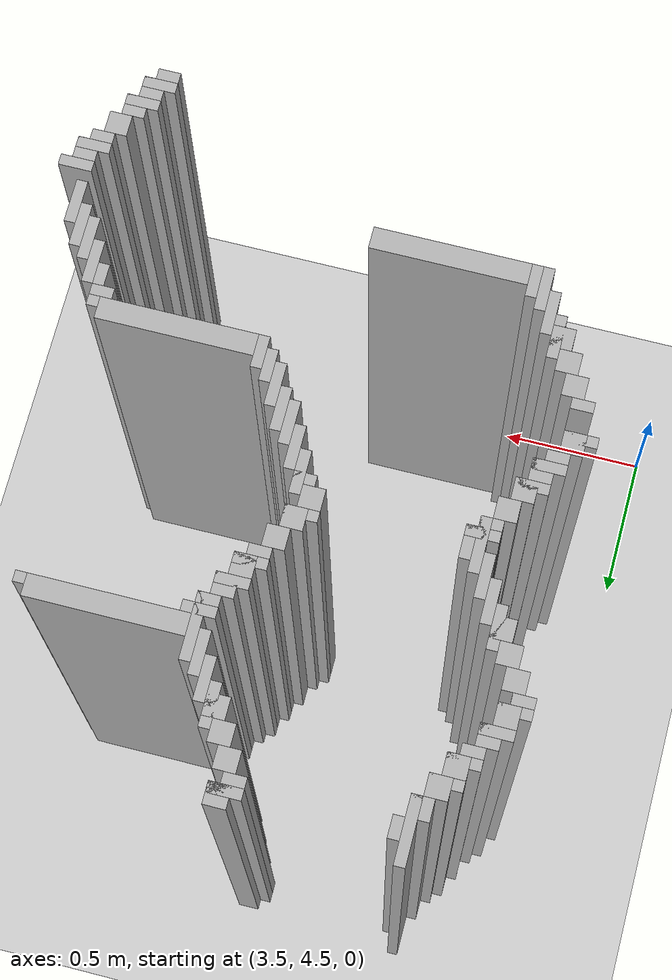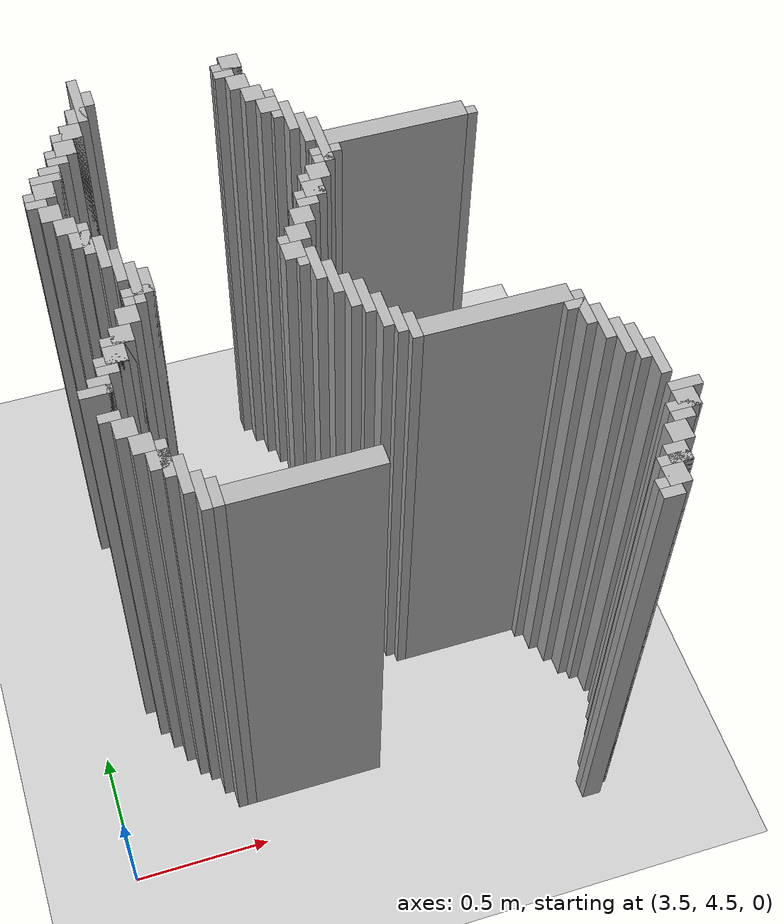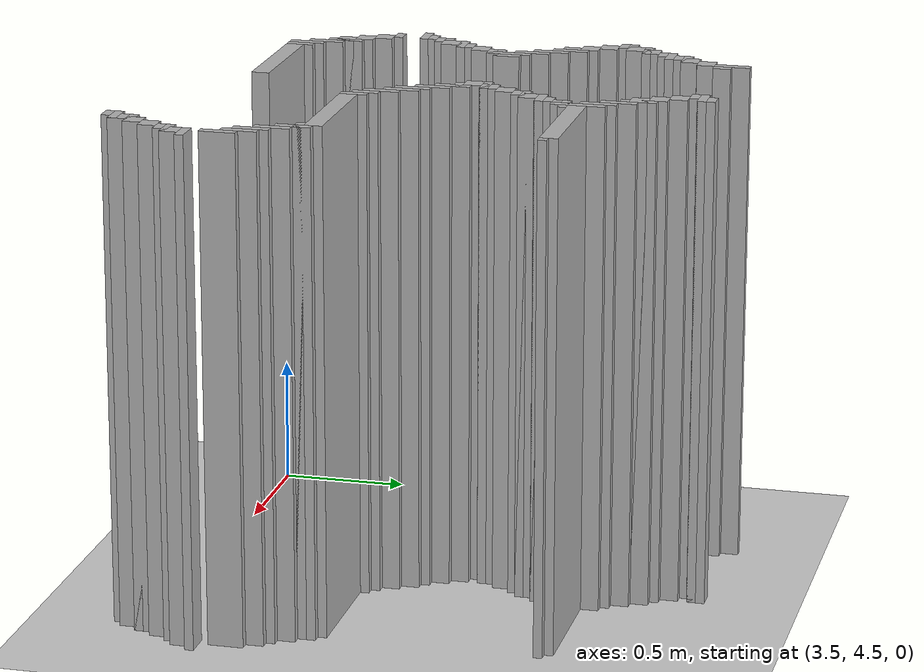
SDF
<sdf version="1.6">
 <world name="slam_world">
  <model name="ground_plane">
   <static>true</static>
   <link name="link">
    <collision name="collision">
     <geometry><plane><normal>0 0 1</normal><size>100 100</size></plane></geometry>
    </collision>
    <visual name="visual">
     <geometry><plane><normal>0 0 1</normal><size>100 100</size></plane></geometry>
     <material>
      <ambient>0.8 0.8 0.8 1</ambient>
      <diffuse>0.8 0.8 0.8 1</diffuse>
      <specular>0.8 0.8 0.8 1</specular>
     </material>
    </visual>
   </link>
  </model>
  <model name="wall_3669">
   <static>true</static>
   <pose>3.9501160092807424 6.403712296983758 1.0 0 0 0</pose>
   <link name="link">
    <collision name="collision">
     <geometry><box><size>0.03480278422273782 0.2088167053364269 2.0</size></box></geometry>
    </collision>
    <visual name="visual">
     <geometry><box><size>0.03480278422273782 0.2088167053364269 2.0</size></box></geometry>
     <material><ambient>0.5 0.5 0.5 1</ambient><diffuse>0.7 0.7 0.7 1</diffuse></material>
    </visual>
   </link>
  </model>
  <model name="wall_3681">
   <static>true</static>
   <pose>4.489559164733178 6.438515081206496 1.0 0 0 0</pose>
   <link name="link">
    <collision name="collision">
     <geometry><box><size>0.06960556844547564 0.06960556844547564 2.0</size></box></geometry>
    </collision>
    <visual name="visual">
     <geometry><box><size>0.06960556844547564 0.06960556844547564 2.0</size></box></geometry>
     <material><ambient>0.5 0.5 0.5 1</ambient><diffuse>0.7 0.7 0.7 1</diffuse></material>
    </visual>
   </link>
  </model>
  <model name="wall_3690">
   <static>true</static>
   <pose>3.98491879350348 6.403712296983758 1.0 0 0 0</pose>
   <link name="link">
    <collision name="collision">
     <geometry><box><size>0.03480278422273782 0.06960556844547564 2.0</size></box></geometry>
    </collision>
    <visual name="visual">
     <geometry><box><size>0.03480278422273782 0.06960556844547564 2.0</size></box></geometry>
     <material><ambient>0.5 0.5 0.5 1</ambient><diffuse>0.7 0.7 0.7 1</diffuse></material>
    </visual>
   </link>
  </model>
  <model name="wall_3691">
   <static>true</static>
   <pose>4.472157772621809 6.421113689095128 1.0 0 0 0</pose>
   <link name="link">
    <collision name="collision">
     <geometry><box><size>0.10440835266821345 0.03480278422273782 2.0</size></box></geometry>
    </collision>
    <visual name="visual">
     <geometry><box><size>0.10440835266821345 0.03480278422273782 2.0</size></box></geometry>
     <material><ambient>0.5 0.5 0.5 1</ambient><diffuse>0.7 0.7 0.7 1</diffuse></material>
    </visual>
   </link>
  </model>
  <model name="wall_3704">
   <static>true</static>
   <pose>4.454756380510441 6.386310904872389 1.0 0 0 0</pose>
   <link name="link">
    <collision name="collision">
     <geometry><box><size>0.06960556844547564 0.03480278422273782 2.0</size></box></geometry>
    </collision>
    <visual name="visual">
     <geometry><box><size>0.06960556844547564 0.03480278422273782 2.0</size></box></geometry>
     <material><ambient>0.5 0.5 0.5 1</ambient><diffuse>0.7 0.7 0.7 1</diffuse></material>
    </visual>
   </link>
  </model>
  <model name="wall_3714">
   <static>true</static>
   <pose>3.932714617169373 6.334106728538282 1.0 0 0 0</pose>
   <link name="link">
    <collision name="collision">
     <geometry><box><size>0.06960556844547564 0.06960556844547564 2.0</size></box></geometry>
    </collision>
    <visual name="visual">
     <geometry><box><size>0.06960556844547564 0.06960556844547564 2.0</size></box></geometry>
     <material><ambient>0.5 0.5 0.5 1</ambient><diffuse>0.7 0.7 0.7 1</diffuse></material>
    </visual>
   </link>
  </model>
  <model name="wall_3715">
   <static>true</static>
   <pose>4.489559164733178 6.334106728538282 1.0 0 0 0</pose>
   <link name="link">
    <collision name="collision">
     <geometry><box><size>0.06960556844547564 0.06960556844547564 2.0</size></box></geometry>
    </collision>
    <visual name="visual">
     <geometry><box><size>0.06960556844547564 0.06960556844547564 2.0</size></box></geometry>
     <material><ambient>0.5 0.5 0.5 1</ambient><diffuse>0.7 0.7 0.7 1</diffuse></material>
    </visual>
   </link>
  </model>
  <model name="wall_3741">
   <static>true</static>
   <pose>3.897911832946636 6.2645011600928076 1.0 0 0 0</pose>
   <link name="link">
    <collision name="collision">
     <geometry><box><size>0.06960556844547564 0.06960556844547564 2.0</size></box></geometry>
    </collision>
    <visual name="visual">
     <geometry><box><size>0.06960556844547564 0.06960556844547564 2.0</size></box></geometry>
     <material><ambient>0.5 0.5 0.5 1</ambient><diffuse>0.7 0.7 0.7 1</diffuse></material>
    </visual>
   </link>
  </model>
  <model name="wall_3742">
   <static>true</static>
   <pose>4.524361948955916 6.2645011600928076 1.0 0 0 0</pose>
   <link name="link">
    <collision name="collision">
     <geometry><box><size>0.06960556844547564 0.06960556844547564 2.0</size></box></geometry>
    </collision>
    <visual name="visual">
     <geometry><box><size>0.06960556844547564 0.06960556844547564 2.0</size></box></geometry>
     <material><ambient>0.5 0.5 0.5 1</ambient><diffuse>0.7 0.7 0.7 1</diffuse></material>
    </visual>
   </link>
  </model>
  <model name="wall_3759">
   <static>true</static>
   <pose>3.8805104408352666 6.247099767981438 1.0 0 0 0</pose>
   <link name="link">
    <collision name="collision">
     <geometry><box><size>0.10440835266821345 0.03480278422273782 2.0</size></box></geometry>
    </collision>
    <visual name="visual">
     <geometry><box><size>0.10440835266821345 0.03480278422273782 2.0</size></box></geometry>
     <material><ambient>0.5 0.5 0.5 1</ambient><diffuse>0.7 0.7 0.7 1</diffuse></material>
    </visual>
   </link>
  </model>
  <model name="wall_3760">
   <static>true</static>
   <pose>4.576566125290023 6.194895591647332 1.0 0 0 0</pose>
   <link name="link">
    <collision name="collision">
     <geometry><box><size>0.03480278422273782 0.13921113689095127 2.0</size></box></geometry>
    </collision>
    <visual name="visual">
     <geometry><box><size>0.03480278422273782 0.13921113689095127 2.0</size></box></geometry>
     <material><ambient>0.5 0.5 0.5 1</ambient><diffuse>0.7 0.7 0.7 1</diffuse></material>
    </visual>
   </link>
  </model>
  <model name="wall_3777">
   <static>true</static>
   <pose>3.863109048723898 6.194895591647332 1.0 0 0 0</pose>
   <link name="link">
    <collision name="collision">
     <geometry><box><size>0.06960556844547564 0.06960556844547564 2.0</size></box></geometry>
    </collision>
    <visual name="visual">
     <geometry><box><size>0.06960556844547564 0.06960556844547564 2.0</size></box></geometry>
     <material><ambient>0.5 0.5 0.5 1</ambient><diffuse>0.7 0.7 0.7 1</diffuse></material>
    </visual>
   </link>
  </model>
  <model name="wall_3778">
   <static>true</static>
   <pose>4.559164733178654 6.194895591647332 1.0 0 0 0</pose>
   <link name="link">
    <collision name="collision">
     <geometry><box><size>0.06960556844547564 0.06960556844547564 2.0</size></box></geometry>
    </collision>
    <visual name="visual">
     <geometry><box><size>0.06960556844547564 0.06960556844547564 2.0</size></box></geometry>
     <material><ambient>0.5 0.5 0.5 1</ambient><diffuse>0.7 0.7 0.7 1</diffuse></material>
    </visual>
   </link>
  </model>
  <model name="wall_3795">
   <static>true</static>
   <pose>3.845707656612529 6.177494199535962 1.0 0 0 0</pose>
   <link name="link">
    <collision name="collision">
     <geometry><box><size>0.10440835266821345 0.03480278422273782 2.0</size></box></geometry>
    </collision>
    <visual name="visual">
     <geometry><box><size>0.10440835266821345 0.03480278422273782 2.0</size></box></geometry>
     <material><ambient>0.5 0.5 0.5 1</ambient><diffuse>0.7 0.7 0.7 1</diffuse></material>
    </visual>
   </link>
  </model>
  <model name="wall_3796">
   <static>true</static>
   <pose>4.611368909512761 6.125290023201856 1.0 0 0 0</pose>
   <link name="link">
    <collision name="collision">
     <geometry><box><size>0.03480278422273782 0.13921113689095127 2.0</size></box></geometry>
    </collision>
    <visual name="visual">
     <geometry><box><size>0.03480278422273782 0.13921113689095127 2.0</size></box></geometry>
     <material><ambient>0.5 0.5 0.5 1</ambient><diffuse>0.7 0.7 0.7 1</diffuse></material>
    </visual>
   </link>
  </model>
  <model name="wall_3810">
   <static>true</static>
   <pose>3.82830626450116 6.142691415313225 1.0 0 0 0</pose>
   <link name="link">
    <collision name="collision">
     <geometry><box><size>0.06960556844547564 0.03480278422273782 2.0</size></box></geometry>
    </collision>
    <visual name="visual">
     <geometry><box><size>0.06960556844547564 0.03480278422273782 2.0</size></box></geometry>
     <material><ambient>0.5 0.5 0.5 1</ambient><diffuse>0.7 0.7 0.7 1</diffuse></material>
    </visual>
   </link>
  </model>
  <model name="wall_3822">
   <static>true</static>
   <pose>3.793503480278422 6.090487238979118 1.0 0 0 0</pose>
   <link name="link">
    <collision name="collision">
     <geometry><box><size>0.06960556844547564 0.06960556844547564 2.0</size></box></geometry>
    </collision>
    <visual name="visual">
     <geometry><box><size>0.06960556844547564 0.06960556844547564 2.0</size></box></geometry>
     <material><ambient>0.5 0.5 0.5 1</ambient><diffuse>0.7 0.7 0.7 1</diffuse></material>
    </visual>
   </link>
  </model>
  <model name="wall_3823">
   <static>true</static>
   <pose>4.646171693735498 6.05568445475638 1.0 0 0 0</pose>
   <link name="link">
    <collision name="collision">
     <geometry><box><size>0.03480278422273782 0.13921113689095127 2.0</size></box></geometry>
    </collision>
    <visual name="visual">
     <geometry><box><size>0.03480278422273782 0.13921113689095127 2.0</size></box></geometry>
     <material><ambient>0.5 0.5 0.5 1</ambient><diffuse>0.7 0.7 0.7 1</diffuse></material>
    </visual>
   </link>
  </model>
  <model name="wall_3840">
   <static>true</static>
   <pose>3.776102088167053 6.073085846867749 1.0 0 0 0</pose>
   <link name="link">
    <collision name="collision">
     <geometry><box><size>0.10440835266821345 0.03480278422273782 2.0</size></box></geometry>
    </collision>
    <visual name="visual">
     <geometry><box><size>0.10440835266821345 0.03480278422273782 2.0</size></box></geometry>
     <material><ambient>0.5 0.5 0.5 1</ambient><diffuse>0.7 0.7 0.7 1</diffuse></material>
    </visual>
   </link>
  </model>
  <model name="wall_3841">
   <static>true</static>
   <pose>4.6809744779582365 5.986078886310905 1.0 0 0 0</pose>
   <link name="link">
    <collision name="collision">
     <geometry><box><size>0.03480278422273782 0.2088167053364269 2.0</size></box></geometry>
    </collision>
    <visual name="visual">
     <geometry><box><size>0.03480278422273782 0.2088167053364269 2.0</size></box></geometry>
     <material><ambient>0.5 0.5 0.5 1</ambient><diffuse>0.7 0.7 0.7 1</diffuse></material>
    </visual>
   </link>
  </model>
  <model name="wall_3855">
   <static>true</static>
   <pose>3.7587006960556844 6.020881670533642 1.0 0 0 0</pose>
   <link name="link">
    <collision name="collision">
     <geometry><box><size>0.06960556844547564 0.06960556844547564 2.0</size></box></geometry>
    </collision>
    <visual name="visual">
     <geometry><box><size>0.06960556844547564 0.06960556844547564 2.0</size></box></geometry>
     <material><ambient>0.5 0.5 0.5 1</ambient><diffuse>0.7 0.7 0.7 1</diffuse></material>
    </visual>
   </link>
  </model>
  <model name="wall_3867">
   <static>true</static>
   <pose>3.741299303944315 6.003480278422273 1.0 0 0 0</pose>
   <link name="link">
    <collision name="collision">
     <geometry><box><size>0.10440835266821345 0.03480278422273782 2.0</size></box></geometry>
    </collision>
    <visual name="visual">
     <geometry><box><size>0.10440835266821345 0.03480278422273782 2.0</size></box></geometry>
     <material><ambient>0.5 0.5 0.5 1</ambient><diffuse>0.7 0.7 0.7 1</diffuse></material>
    </visual>
   </link>
  </model>
  <model name="wall_3868">
   <static>true</static>
   <pose>4.94199535962877 5.986078886310905 1.0 0 0 0</pose>
   <link name="link">
    <collision name="collision">
     <geometry><box><size>0.4872389791183295 0.06960556844547564 2.0</size></box></geometry>
    </collision>
    <visual name="visual">
     <geometry><box><size>0.4872389791183295 0.06960556844547564 2.0</size></box></geometry>
     <material><ambient>0.5 0.5 0.5 1</ambient><diffuse>0.7 0.7 0.7 1</diffuse></material>
    </visual>
   </link>
  </model>
  <model name="wall_3879">
   <static>true</static>
   <pose>3.7238979118329465 5.968677494199536 1.0 0 0 0</pose>
   <link name="link">
    <collision name="collision">
     <geometry><box><size>0.06960556844547564 0.03480278422273782 2.0</size></box></geometry>
    </collision>
    <visual name="visual">
     <geometry><box><size>0.06960556844547564 0.03480278422273782 2.0</size></box></geometry>
     <material><ambient>0.5 0.5 0.5 1</ambient><diffuse>0.7 0.7 0.7 1</diffuse></material>
    </visual>
   </link>
  </model>
  <model name="wall_3880">
   <static>true</static>
   <pose>5.203016241299304 5.968677494199536 1.0 0 0 0</pose>
   <link name="link">
    <collision name="collision">
     <geometry><box><size>0.03480278422273782 0.03480278422273782 2.0</size></box></geometry>
    </collision>
    <visual name="visual">
     <geometry><box><size>0.03480278422273782 0.03480278422273782 2.0</size></box></geometry>
     <material><ambient>0.5 0.5 0.5 1</ambient><diffuse>0.7 0.7 0.7 1</diffuse></material>
    </visual>
   </link>
  </model>
  <model name="wall_3890">
   <static>true</static>
   <pose>3.7587006960556844 5.916473317865429 1.0 0 0 0</pose>
   <link name="link">
    <collision name="collision">
     <geometry><box><size>0.06960556844547564 0.06960556844547564 2.0</size></box></geometry>
    </collision>
    <visual name="visual">
     <geometry><box><size>0.06960556844547564 0.06960556844547564 2.0</size></box></geometry>
     <material><ambient>0.5 0.5 0.5 1</ambient><diffuse>0.7 0.7 0.7 1</diffuse></material>
    </visual>
   </link>
  </model>
  <model name="wall_3891">
   <static>true</static>
   <pose>4.6809744779582365 5.933874709976798 1.0 0 0 0</pose>
   <link name="link">
    <collision name="collision">
     <geometry><box><size>0.10440835266821345 0.03480278422273782 2.0</size></box></geometry>
    </collision>
    <visual name="visual">
     <geometry><box><size>0.10440835266821345 0.03480278422273782 2.0</size></box></geometry>
     <material><ambient>0.5 0.5 0.5 1</ambient><diffuse>0.7 0.7 0.7 1</diffuse></material>
    </visual>
   </link>
  </model>
  <model name="wall_3899">
   <static>true</static>
   <pose>4.663573085846868 5.89907192575406 1.0 0 0 0</pose>
   <link name="link">
    <collision name="collision">
     <geometry><box><size>0.06960556844547564 0.03480278422273782 2.0</size></box></geometry>
    </collision>
    <visual name="visual">
     <geometry><box><size>0.06960556844547564 0.03480278422273782 2.0</size></box></geometry>
     <material><ambient>0.5 0.5 0.5 1</ambient><diffuse>0.7 0.7 0.7 1</diffuse></material>
    </visual>
   </link>
  </model>
  <model name="wall_3906">
   <static>true</static>
   <pose>3.793503480278422 5.846867749419953 1.0 0 0 0</pose>
   <link name="link">
    <collision name="collision">
     <geometry><box><size>0.06960556844547564 0.06960556844547564 2.0</size></box></geometry>
    </collision>
    <visual name="visual">
     <geometry><box><size>0.06960556844547564 0.06960556844547564 2.0</size></box></geometry>
     <material><ambient>0.5 0.5 0.5 1</ambient><diffuse>0.7 0.7 0.7 1</diffuse></material>
    </visual>
   </link>
  </model>
  <model name="wall_3907">
   <static>true</static>
   <pose>4.6287703016241295 5.846867749419953 1.0 0 0 0</pose>
   <link name="link">
    <collision name="collision">
     <geometry><box><size>0.06960556844547564 0.06960556844547564 2.0</size></box></geometry>
    </collision>
    <visual name="visual">
     <geometry><box><size>0.06960556844547564 0.06960556844547564 2.0</size></box></geometry>
     <material><ambient>0.5 0.5 0.5 1</ambient><diffuse>0.7 0.7 0.7 1</diffuse></material>
    </visual>
   </link>
  </model>
  <model name="wall_3917">
   <static>true</static>
   <pose>3.845707656612529 5.7772621809744775 1.0 0 0 0</pose>
   <link name="link">
    <collision name="collision">
     <geometry><box><size>0.03480278422273782 0.13921113689095127 2.0</size></box></geometry>
    </collision>
    <visual name="visual">
     <geometry><box><size>0.03480278422273782 0.13921113689095127 2.0</size></box></geometry>
     <material><ambient>0.5 0.5 0.5 1</ambient><diffuse>0.7 0.7 0.7 1</diffuse></material>
    </visual>
   </link>
  </model>
  <model name="wall_3918">
   <static>true</static>
   <pose>4.611368909512761 5.8294663573085845 1.0 0 0 0</pose>
   <link name="link">
    <collision name="collision">
     <geometry><box><size>0.10440835266821345 0.03480278422273782 2.0</size></box></geometry>
    </collision>
    <visual name="visual">
     <geometry><box><size>0.10440835266821345 0.03480278422273782 2.0</size></box></geometry>
     <material><ambient>0.5 0.5 0.5 1</ambient><diffuse>0.7 0.7 0.7 1</diffuse></material>
    </visual>
   </link>
  </model>
  <model name="wall_3928">
   <static>true</static>
   <pose>3.82830626450116 5.7772621809744775 1.0 0 0 0</pose>
   <link name="link">
    <collision name="collision">
     <geometry><box><size>0.06960556844547564 0.06960556844547564 2.0</size></box></geometry>
    </collision>
    <visual name="visual">
     <geometry><box><size>0.06960556844547564 0.06960556844547564 2.0</size></box></geometry>
     <material><ambient>0.5 0.5 0.5 1</ambient><diffuse>0.7 0.7 0.7 1</diffuse></material>
    </visual>
   </link>
  </model>
  <model name="wall_3929">
   <static>true</static>
   <pose>4.593967517401392 5.7772621809744775 1.0 0 0 0</pose>
   <link name="link">
    <collision name="collision">
     <geometry><box><size>0.06960556844547564 0.06960556844547564 2.0</size></box></geometry>
    </collision>
    <visual name="visual">
     <geometry><box><size>0.06960556844547564 0.06960556844547564 2.0</size></box></geometry>
     <material><ambient>0.5 0.5 0.5 1</ambient><diffuse>0.7 0.7 0.7 1</diffuse></material>
    </visual>
   </link>
  </model>
  <model name="wall_3939">
   <static>true</static>
   <pose>3.8805104408352666 5.707656612529002 1.0 0 0 0</pose>
   <link name="link">
    <collision name="collision">
     <geometry><box><size>0.03480278422273782 0.13921113689095127 2.0</size></box></geometry>
    </collision>
    <visual name="visual">
     <geometry><box><size>0.03480278422273782 0.13921113689095127 2.0</size></box></geometry>
     <material><ambient>0.5 0.5 0.5 1</ambient><diffuse>0.7 0.7 0.7 1</diffuse></material>
    </visual>
   </link>
  </model>
  <model name="wall_3940">
   <static>true</static>
   <pose>4.576566125290023 5.759860788863109 1.0 0 0 0</pose>
   <link name="link">
    <collision name="collision">
     <geometry><box><size>0.10440835266821345 0.03480278422273782 2.0</size></box></geometry>
    </collision>
    <visual name="visual">
     <geometry><box><size>0.10440835266821345 0.03480278422273782 2.0</size></box></geometry>
     <material><ambient>0.5 0.5 0.5 1</ambient><diffuse>0.7 0.7 0.7 1</diffuse></material>
    </visual>
   </link>
  </model>
  <model name="wall_3950">
   <static>true</static>
   <pose>4.559164733178654 5.725058004640371 1.0 0 0 0</pose>
   <link name="link">
    <collision name="collision">
     <geometry><box><size>0.06960556844547564 0.03480278422273782 2.0</size></box></geometry>
    </collision>
    <visual name="visual">
     <geometry><box><size>0.06960556844547564 0.03480278422273782 2.0</size></box></geometry>
     <material><ambient>0.5 0.5 0.5 1</ambient><diffuse>0.7 0.7 0.7 1</diffuse></material>
    </visual>
   </link>
  </model>
  <model name="wall_3959">
   <static>true</static>
   <pose>3.9153132250580045 5.638051044083526 1.0 0 0 0</pose>
   <link name="link">
    <collision name="collision">
     <geometry><box><size>0.03480278422273782 0.13921113689095127 2.0</size></box></geometry>
    </collision>
    <visual name="visual">
     <geometry><box><size>0.03480278422273782 0.13921113689095127 2.0</size></box></geometry>
     <material><ambient>0.5 0.5 0.5 1</ambient><diffuse>0.7 0.7 0.7 1</diffuse></material>
    </visual>
   </link>
  </model>
  <model name="wall_3960">
   <static>true</static>
   <pose>4.524361948955916 5.672853828306264 1.0 0 0 0</pose>
   <link name="link">
    <collision name="collision">
     <geometry><box><size>0.06960556844547564 0.06960556844547564 2.0</size></box></geometry>
    </collision>
    <visual name="visual">
     <geometry><box><size>0.06960556844547564 0.06960556844547564 2.0</size></box></geometry>
     <material><ambient>0.5 0.5 0.5 1</ambient><diffuse>0.7 0.7 0.7 1</diffuse></material>
    </visual>
   </link>
  </model>
  <model name="wall_3970">
   <static>true</static>
   <pose>3.9501160092807424 5.551044083526682 1.0 0 0 0</pose>
   <link name="link">
    <collision name="collision">
     <geometry><box><size>0.03480278422273782 0.17401392111368907 2.0</size></box></geometry>
    </collision>
    <visual name="visual">
     <geometry><box><size>0.03480278422273782 0.17401392111368907 2.0</size></box></geometry>
     <material><ambient>0.5 0.5 0.5 1</ambient><diffuse>0.7 0.7 0.7 1</diffuse></material>
    </visual>
   </link>
  </model>
  <model name="wall_3971">
   <static>true</static>
   <pose>4.489559164733178 5.603248259860789 1.0 0 0 0</pose>
   <link name="link">
    <collision name="collision">
     <geometry><box><size>0.06960556844547564 0.06960556844547564 2.0</size></box></geometry>
    </collision>
    <visual name="visual">
     <geometry><box><size>0.06960556844547564 0.06960556844547564 2.0</size></box></geometry>
     <material><ambient>0.5 0.5 0.5 1</ambient><diffuse>0.7 0.7 0.7 1</diffuse></material>
    </visual>
   </link>
  </model>
  <model name="wall_3981">
   <static>true</static>
   <pose>3.98491879350348 5.551044083526682 1.0 0 0 0</pose>
   <link name="link">
    <collision name="collision">
     <geometry><box><size>0.03480278422273782 0.10440835266821345 2.0</size></box></geometry>
    </collision>
    <visual name="visual">
     <geometry><box><size>0.03480278422273782 0.10440835266821345 2.0</size></box></geometry>
     <material><ambient>0.5 0.5 0.5 1</ambient><diffuse>0.7 0.7 0.7 1</diffuse></material>
    </visual>
   </link>
  </model>
  <model name="wall_3982">
   <static>true</static>
   <pose>4.472157772621809 5.58584686774942 1.0 0 0 0</pose>
   <link name="link">
    <collision name="collision">
     <geometry><box><size>0.10440835266821345 0.03480278422273782 2.0</size></box></geometry>
    </collision>
    <visual name="visual">
     <geometry><box><size>0.10440835266821345 0.03480278422273782 2.0</size></box></geometry>
     <material><ambient>0.5 0.5 0.5 1</ambient><diffuse>0.7 0.7 0.7 1</diffuse></material>
    </visual>
   </link>
  </model>
  <model name="wall_3994">
   <static>true</static>
   <pose>4.454756380510441 5.533642691415313 1.0 0 0 0</pose>
   <link name="link">
    <collision name="collision">
     <geometry><box><size>0.06960556844547564 0.06960556844547564 2.0</size></box></geometry>
    </collision>
    <visual name="visual">
     <geometry><box><size>0.06960556844547564 0.06960556844547564 2.0</size></box></geometry>
     <material><ambient>0.5 0.5 0.5 1</ambient><diffuse>0.7 0.7 0.7 1</diffuse></material>
    </visual>
   </link>
  </model>
  <model name="wall_4008">
   <static>true</static>
   <pose>3.9501160092807424 5.516241299303944 1.0 0 0 0</pose>
   <link name="link">
    <collision name="collision">
     <geometry><box><size>0.10440835266821345 0.03480278422273782 2.0</size></box></geometry>
    </collision>
    <visual name="visual">
     <geometry><box><size>0.10440835266821345 0.03480278422273782 2.0</size></box></geometry>
     <material><ambient>0.5 0.5 0.5 1</ambient><diffuse>0.7 0.7 0.7 1</diffuse></material>
    </visual>
   </link>
  </model>
  <model name="wall_4009">
   <static>true</static>
   <pose>4.506960556844548 5.464037122969837 1.0 0 0 0</pose>
   <link name="link">
    <collision name="collision">
     <geometry><box><size>0.03480278422273782 0.13921113689095127 2.0</size></box></geometry>
    </collision>
    <visual name="visual">
     <geometry><box><size>0.03480278422273782 0.13921113689095127 2.0</size></box></geometry>
     <material><ambient>0.5 0.5 0.5 1</ambient><diffuse>0.7 0.7 0.7 1</diffuse></material>
    </visual>
   </link>
  </model>
  <model name="wall_4025">
   <static>true</static>
   <pose>3.932714617169373 5.481438515081206 1.0 0 0 0</pose>
   <link name="link">
    <collision name="collision">
     <geometry><box><size>0.06960556844547564 0.03480278422273782 2.0</size></box></geometry>
    </collision>
    <visual name="visual">
     <geometry><box><size>0.06960556844547564 0.03480278422273782 2.0</size></box></geometry>
     <material><ambient>0.5 0.5 0.5 1</ambient><diffuse>0.7 0.7 0.7 1</diffuse></material>
    </visual>
   </link>
  </model>
  <model name="wall_4026">
   <static>true</static>
   <pose>4.489559164733178 5.481438515081206 1.0 0 0 0</pose>
   <link name="link">
    <collision name="collision">
     <geometry><box><size>0.06960556844547564 0.03480278422273782 2.0</size></box></geometry>
    </collision>
    <visual name="visual">
     <geometry><box><size>0.06960556844547564 0.03480278422273782 2.0</size></box></geometry>
     <material><ambient>0.5 0.5 0.5 1</ambient><diffuse>0.7 0.7 0.7 1</diffuse></material>
    </visual>
   </link>
  </model>
  <model name="wall_4040">
   <static>true</static>
   <pose>3.897911832946636 5.4292343387471 1.0 0 0 0</pose>
   <link name="link">
    <collision name="collision">
     <geometry><box><size>0.06960556844547564 0.06960556844547564 2.0</size></box></geometry>
    </collision>
    <visual name="visual">
     <geometry><box><size>0.06960556844547564 0.06960556844547564 2.0</size></box></geometry>
     <material><ambient>0.5 0.5 0.5 1</ambient><diffuse>0.7 0.7 0.7 1</diffuse></material>
    </visual>
   </link>
  </model>
  <model name="wall_4041">
   <static>true</static>
   <pose>4.541763341067285 5.3944315545243615 1.0 0 0 0</pose>
   <link name="link">
    <collision name="collision">
     <geometry><box><size>0.03480278422273782 0.13921113689095127 2.0</size></box></geometry>
    </collision>
    <visual name="visual">
     <geometry><box><size>0.03480278422273782 0.13921113689095127 2.0</size></box></geometry>
     <material><ambient>0.5 0.5 0.5 1</ambient><diffuse>0.7 0.7 0.7 1</diffuse></material>
    </visual>
   </link>
  </model>
  <model name="wall_4055">
   <static>true</static>
   <pose>3.863109048723898 5.359628770301624 1.0 0 0 0</pose>
   <link name="link">
    <collision name="collision">
     <geometry><box><size>0.06960556844547564 0.06960556844547564 2.0</size></box></geometry>
    </collision>
    <visual name="visual">
     <geometry><box><size>0.06960556844547564 0.06960556844547564 2.0</size></box></geometry>
     <material><ambient>0.5 0.5 0.5 1</ambient><diffuse>0.7 0.7 0.7 1</diffuse></material>
    </visual>
   </link>
  </model>
  <model name="wall_4056">
   <static>true</static>
   <pose>4.576566125290023 5.324825986078886 1.0 0 0 0</pose>
   <link name="link">
    <collision name="collision">
     <geometry><box><size>0.03480278422273782 0.13921113689095127 2.0</size></box></geometry>
    </collision>
    <visual name="visual">
     <geometry><box><size>0.03480278422273782 0.13921113689095127 2.0</size></box></geometry>
     <material><ambient>0.5 0.5 0.5 1</ambient><diffuse>0.7 0.7 0.7 1</diffuse></material>
    </visual>
   </link>
  </model>
  <model name="wall_4070">
   <static>true</static>
   <pose>3.845707656612529 5.342227378190255 1.0 0 0 0</pose>
   <link name="link">
    <collision name="collision">
     <geometry><box><size>0.10440835266821345 0.03480278422273782 2.0</size></box></geometry>
    </collision>
    <visual name="visual">
     <geometry><box><size>0.10440835266821345 0.03480278422273782 2.0</size></box></geometry>
     <material><ambient>0.5 0.5 0.5 1</ambient><diffuse>0.7 0.7 0.7 1</diffuse></material>
    </visual>
   </link>
  </model>
  <model name="wall_4071">
   <static>true</static>
   <pose>4.611368909512761 5.290023201856148 1.0 0 0 0</pose>
   <link name="link">
    <collision name="collision">
     <geometry><box><size>0.03480278422273782 0.13921113689095127 2.0</size></box></geometry>
    </collision>
    <visual name="visual">
     <geometry><box><size>0.03480278422273782 0.13921113689095127 2.0</size></box></geometry>
     <material><ambient>0.5 0.5 0.5 1</ambient><diffuse>0.7 0.7 0.7 1</diffuse></material>
    </visual>
   </link>
  </model>
  <model name="wall_4084">
   <static>true</static>
   <pose>3.82830626450116 5.290023201856148 1.0 0 0 0</pose>
   <link name="link">
    <collision name="collision">
     <geometry><box><size>0.06960556844547564 0.06960556844547564 2.0</size></box></geometry>
    </collision>
    <visual name="visual">
     <geometry><box><size>0.06960556844547564 0.06960556844547564 2.0</size></box></geometry>
     <material><ambient>0.5 0.5 0.5 1</ambient><diffuse>0.7 0.7 0.7 1</diffuse></material>
    </visual>
   </link>
  </model>
  <model name="wall_4096">
   <static>true</static>
   <pose>3.810904872389791 5.27262180974478 1.0 0 0 0</pose>
   <link name="link">
    <collision name="collision">
     <geometry><box><size>0.10440835266821345 0.03480278422273782 2.0</size></box></geometry>
    </collision>
    <visual name="visual">
     <geometry><box><size>0.10440835266821345 0.03480278422273782 2.0</size></box></geometry>
     <material><ambient>0.5 0.5 0.5 1</ambient><diffuse>0.7 0.7 0.7 1</diffuse></material>
    </visual>
   </link>
  </model>
  <model name="wall_4097">
   <static>true</static>
   <pose>4.646171693735498 5.220417633410673 1.0 0 0 0</pose>
   <link name="link">
    <collision name="collision">
     <geometry><box><size>0.03480278422273782 0.13921113689095127 2.0</size></box></geometry>
    </collision>
    <visual name="visual">
     <geometry><box><size>0.03480278422273782 0.13921113689095127 2.0</size></box></geometry>
     <material><ambient>0.5 0.5 0.5 1</ambient><diffuse>0.7 0.7 0.7 1</diffuse></material>
    </visual>
   </link>
  </model>
  <model name="wall_4110">
   <static>true</static>
   <pose>3.793503480278422 5.237819025522041 1.0 0 0 0</pose>
   <link name="link">
    <collision name="collision">
     <geometry><box><size>0.06960556844547564 0.03480278422273782 2.0</size></box></geometry>
    </collision>
    <visual name="visual">
     <geometry><box><size>0.06960556844547564 0.03480278422273782 2.0</size></box></geometry>
     <material><ambient>0.5 0.5 0.5 1</ambient><diffuse>0.7 0.7 0.7 1</diffuse></material>
    </visual>
   </link>
  </model>
  <model name="wall_4119">
   <static>true</static>
   <pose>3.7587006960556844 5.185614849187935 1.0 0 0 0</pose>
   <link name="link">
    <collision name="collision">
     <geometry><box><size>0.06960556844547564 0.06960556844547564 2.0</size></box></geometry>
    </collision>
    <visual name="visual">
     <geometry><box><size>0.06960556844547564 0.06960556844547564 2.0</size></box></geometry>
     <material><ambient>0.5 0.5 0.5 1</ambient><diffuse>0.7 0.7 0.7 1</diffuse></material>
    </visual>
   </link>
  </model>
  <model name="wall_4120">
   <static>true</static>
   <pose>4.6809744779582365 5.168213457076566 1.0 0 0 0</pose>
   <link name="link">
    <collision name="collision">
     <geometry><box><size>0.03480278422273782 0.10440835266821345 2.0</size></box></geometry>
    </collision>
    <visual name="visual">
     <geometry><box><size>0.03480278422273782 0.10440835266821345 2.0</size></box></geometry>
     <material><ambient>0.5 0.5 0.5 1</ambient><diffuse>0.7 0.7 0.7 1</diffuse></material>
    </visual>
   </link>
  </model>
  <model name="wall_4134">
   <static>true</static>
   <pose>3.741299303944315 5.168213457076566 1.0 0 0 0</pose>
   <link name="link">
    <collision name="collision">
     <geometry><box><size>0.10440835266821345 0.03480278422273782 2.0</size></box></geometry>
    </collision>
    <visual name="visual">
     <geometry><box><size>0.10440835266821345 0.03480278422273782 2.0</size></box></geometry>
     <material><ambient>0.5 0.5 0.5 1</ambient><diffuse>0.7 0.7 0.7 1</diffuse></material>
    </visual>
   </link>
  </model>
  <model name="wall_4135">
   <static>true</static>
   <pose>4.715777262180974 5.133410672853828 1.0 0 0 0</pose>
   <link name="link">
    <collision name="collision">
     <geometry><box><size>0.03480278422273782 0.10440835266821345 2.0</size></box></geometry>
    </collision>
    <visual name="visual">
     <geometry><box><size>0.03480278422273782 0.10440835266821345 2.0</size></box></geometry>
     <material><ambient>0.5 0.5 0.5 1</ambient><diffuse>0.7 0.7 0.7 1</diffuse></material>
    </visual>
   </link>
  </model>
  <model name="wall_4149">
   <static>true</static>
   <pose>4.976798143851508 5.1160092807424595 1.0 0 0 0</pose>
   <link name="link">
    <collision name="collision">
     <geometry><box><size>0.4872389791183295 0.06960556844547564 2.0</size></box></geometry>
    </collision>
    <visual name="visual">
     <geometry><box><size>0.4872389791183295 0.06960556844547564 2.0</size></box></geometry>
     <material><ambient>0.5 0.5 0.5 1</ambient><diffuse>0.7 0.7 0.7 1</diffuse></material>
    </visual>
   </link>
  </model>
  <model name="wall_4160">
   <static>true</static>
   <pose>5.237819025522041 5.046403712296984 1.0 0 0 0</pose>
   <link name="link">
    <collision name="collision">
     <geometry><box><size>0.03480278422273782 0.13921113689095127 2.0</size></box></geometry>
    </collision>
    <visual name="visual">
     <geometry><box><size>0.03480278422273782 0.13921113689095127 2.0</size></box></geometry>
     <material><ambient>0.5 0.5 0.5 1</ambient><diffuse>0.7 0.7 0.7 1</diffuse></material>
    </visual>
   </link>
  </model>
  <model name="wall_4173">
   <static>true</static>
   <pose>3.7587006960556844 5.0638051044083525 1.0 0 0 0</pose>
   <link name="link">
    <collision name="collision">
     <geometry><box><size>0.06960556844547564 0.03480278422273782 2.0</size></box></geometry>
    </collision>
    <visual name="visual">
     <geometry><box><size>0.06960556844547564 0.03480278422273782 2.0</size></box></geometry>
     <material><ambient>0.5 0.5 0.5 1</ambient><diffuse>0.7 0.7 0.7 1</diffuse></material>
    </visual>
   </link>
  </model>
  <model name="wall_4174">
   <static>true</static>
   <pose>5.220417633410673 5.0638051044083525 1.0 0 0 0</pose>
   <link name="link">
    <collision name="collision">
     <geometry><box><size>0.06960556844547564 0.03480278422273782 2.0</size></box></geometry>
    </collision>
    <visual name="visual">
     <geometry><box><size>0.06960556844547564 0.03480278422273782 2.0</size></box></geometry>
     <material><ambient>0.5 0.5 0.5 1</ambient><diffuse>0.7 0.7 0.7 1</diffuse></material>
    </visual>
   </link>
  </model>
  <model name="wall_4188">
   <static>true</static>
   <pose>3.793503480278422 5.0116009280742455 1.0 0 0 0</pose>
   <link name="link">
    <collision name="collision">
     <geometry><box><size>0.06960556844547564 0.06960556844547564 2.0</size></box></geometry>
    </collision>
    <visual name="visual">
     <geometry><box><size>0.06960556844547564 0.06960556844547564 2.0</size></box></geometry>
     <material><ambient>0.5 0.5 0.5 1</ambient><diffuse>0.7 0.7 0.7 1</diffuse></material>
    </visual>
   </link>
  </model>
  <model name="wall_4189">
   <static>true</static>
   <pose>5.27262180974478 4.976798143851508 1.0 0 0 0</pose>
   <link name="link">
    <collision name="collision">
     <geometry><box><size>0.03480278422273782 0.13921113689095127 2.0</size></box></geometry>
    </collision>
    <visual name="visual">
     <geometry><box><size>0.03480278422273782 0.13921113689095127 2.0</size></box></geometry>
     <material><ambient>0.5 0.5 0.5 1</ambient><diffuse>0.7 0.7 0.7 1</diffuse></material>
    </visual>
   </link>
  </model>
  <model name="wall_4203">
   <static>true</static>
   <pose>3.82830626450116 4.94199535962877 1.0 0 0 0</pose>
   <link name="link">
    <collision name="collision">
     <geometry><box><size>0.06960556844547564 0.06960556844547564 2.0</size></box></geometry>
    </collision>
    <visual name="visual">
     <geometry><box><size>0.06960556844547564 0.06960556844547564 2.0</size></box></geometry>
     <material><ambient>0.5 0.5 0.5 1</ambient><diffuse>0.7 0.7 0.7 1</diffuse></material>
    </visual>
   </link>
  </model>
  <model name="wall_4204">
   <static>true</static>
   <pose>5.307424593967517 4.907192575406032 1.0 0 0 0</pose>
   <link name="link">
    <collision name="collision">
     <geometry><box><size>0.03480278422273782 0.13921113689095127 2.0</size></box></geometry>
    </collision>
    <visual name="visual">
     <geometry><box><size>0.03480278422273782 0.13921113689095127 2.0</size></box></geometry>
     <material><ambient>0.5 0.5 0.5 1</ambient><diffuse>0.7 0.7 0.7 1</diffuse></material>
    </visual>
   </link>
  </model>
  <model name="wall_4218">
   <static>true</static>
   <pose>3.8805104408352666 4.872389791183294 1.0 0 0 0</pose>
   <link name="link">
    <collision name="collision">
     <geometry><box><size>0.03480278422273782 0.13921113689095127 2.0</size></box></geometry>
    </collision>
    <visual name="visual">
     <geometry><box><size>0.03480278422273782 0.13921113689095127 2.0</size></box></geometry>
     <material><ambient>0.5 0.5 0.5 1</ambient><diffuse>0.7 0.7 0.7 1</diffuse></material>
    </visual>
   </link>
  </model>
  <model name="wall_4219">
   <static>true</static>
   <pose>5.342227378190255 4.872389791183294 1.0 0 0 0</pose>
   <link name="link">
    <collision name="collision">
     <geometry><box><size>0.03480278422273782 0.13921113689095127 2.0</size></box></geometry>
    </collision>
    <visual name="visual">
     <geometry><box><size>0.03480278422273782 0.13921113689095127 2.0</size></box></geometry>
     <material><ambient>0.5 0.5 0.5 1</ambient><diffuse>0.7 0.7 0.7 1</diffuse></material>
    </visual>
   </link>
  </model>
  <model name="wall_4233">
   <static>true</static>
   <pose>3.863109048723898 4.872389791183294 1.0 0 0 0</pose>
   <link name="link">
    <collision name="collision">
     <geometry><box><size>0.06960556844547564 0.06960556844547564 2.0</size></box></geometry>
    </collision>
    <visual name="visual">
     <geometry><box><size>0.06960556844547564 0.06960556844547564 2.0</size></box></geometry>
     <material><ambient>0.5 0.5 0.5 1</ambient><diffuse>0.7 0.7 0.7 1</diffuse></material>
    </visual>
   </link>
  </model>
  <model name="wall_4244">
   <static>true</static>
   <pose>3.9153132250580045 4.802784222737819 1.0 0 0 0</pose>
   <link name="link">
    <collision name="collision">
     <geometry><box><size>0.03480278422273782 0.13921113689095127 2.0</size></box></geometry>
    </collision>
    <visual name="visual">
     <geometry><box><size>0.03480278422273782 0.13921113689095127 2.0</size></box></geometry>
     <material><ambient>0.5 0.5 0.5 1</ambient><diffuse>0.7 0.7 0.7 1</diffuse></material>
    </visual>
   </link>
  </model>
  <model name="wall_4245">
   <static>true</static>
   <pose>5.377030162412993 4.802784222737819 1.0 0 0 0</pose>
   <link name="link">
    <collision name="collision">
     <geometry><box><size>0.03480278422273782 0.13921113689095127 2.0</size></box></geometry>
    </collision>
    <visual name="visual">
     <geometry><box><size>0.03480278422273782 0.13921113689095127 2.0</size></box></geometry>
     <material><ambient>0.5 0.5 0.5 1</ambient><diffuse>0.7 0.7 0.7 1</diffuse></material>
    </visual>
   </link>
  </model>
  <model name="wall_4268">
   <static>true</static>
   <pose>3.9501160092807424 4.7331786542923435 1.0 0 0 0</pose>
   <link name="link">
    <collision name="collision">
     <geometry><box><size>0.03480278422273782 0.13921113689095127 2.0</size></box></geometry>
    </collision>
    <visual name="visual">
     <geometry><box><size>0.03480278422273782 0.13921113689095127 2.0</size></box></geometry>
     <material><ambient>0.5 0.5 0.5 1</ambient><diffuse>0.7 0.7 0.7 1</diffuse></material>
    </visual>
   </link>
  </model>
  <model name="wall_4282">
   <static>true</static>
   <pose>3.98491879350348 4.715777262180974 1.0 0 0 0</pose>
   <link name="link">
    <collision name="collision">
     <geometry><box><size>0.03480278422273782 0.10440835266821345 2.0</size></box></geometry>
    </collision>
    <visual name="visual">
     <geometry><box><size>0.03480278422273782 0.10440835266821345 2.0</size></box></geometry>
     <material><ambient>0.5 0.5 0.5 1</ambient><diffuse>0.7 0.7 0.7 1</diffuse></material>
    </visual>
   </link>
  </model>
  <model name="wall_4295">
   <static>true</static>
   <pose>4.2459396751740135 4.698375870069605 1.0 0 0 0</pose>
   <link name="link">
    <collision name="collision">
     <geometry><box><size>0.4872389791183295 0.06960556844547564 2.0</size></box></geometry>
    </collision>
    <visual name="visual">
     <geometry><box><size>0.4872389791183295 0.06960556844547564 2.0</size></box></geometry>
     <material><ambient>0.5 0.5 0.5 1</ambient><diffuse>0.7 0.7 0.7 1</diffuse></material>
    </visual>
   </link>
  </model>
  <model name="wall_4307">
   <static>true</static>
   <pose>5.41183294663573 4.6809744779582365 1.0 0 0 0</pose>
   <link name="link">
    <collision name="collision">
     <geometry><box><size>0.10440835266821345 0.03480278422273782 2.0</size></box></geometry>
    </collision>
    <visual name="visual">
     <geometry><box><size>0.10440835266821345 0.03480278422273782 2.0</size></box></geometry>
     <material><ambient>0.5 0.5 0.5 1</ambient><diffuse>0.7 0.7 0.7 1</diffuse></material>
    </visual>
   </link>
  </model>
  <model name="wall_4319">
   <static>true</static>
   <pose>5.3944315545243615 4.6287703016241295 1.0 0 0 0</pose>
   <link name="link">
    <collision name="collision">
     <geometry><box><size>0.06960556844547564 0.06960556844547564 2.0</size></box></geometry>
    </collision>
    <visual name="visual">
     <geometry><box><size>0.06960556844547564 0.06960556844547564 2.0</size></box></geometry>
     <material><ambient>0.5 0.5 0.5 1</ambient><diffuse>0.7 0.7 0.7 1</diffuse></material>
    </visual>
   </link>
  </model>
  <model name="wall_4332">
   <static>true</static>
   <pose>5.377030162412993 4.611368909512761 1.0 0 0 0</pose>
   <link name="link">
    <collision name="collision">
     <geometry><box><size>0.10440835266821345 0.03480278422273782 2.0</size></box></geometry>
    </collision>
    <visual name="visual">
     <geometry><box><size>0.10440835266821345 0.03480278422273782 2.0</size></box></geometry>
     <material><ambient>0.5 0.5 0.5 1</ambient><diffuse>0.7 0.7 0.7 1</diffuse></material>
    </visual>
   </link>
  </model>
  <model name="wall_4343">
   <static>true</static>
   <pose>5.359628770301624 4.576566125290023 1.0 0 0 0</pose>
   <link name="link">
    <collision name="collision">
     <geometry><box><size>0.06960556844547564 0.03480278422273782 2.0</size></box></geometry>
    </collision>
    <visual name="visual">
     <geometry><box><size>0.06960556844547564 0.03480278422273782 2.0</size></box></geometry>
     <material><ambient>0.5 0.5 0.5 1</ambient><diffuse>0.7 0.7 0.7 1</diffuse></material>
    </visual>
   </link>
  </model>
  <model name="wall_4353">
   <static>true</static>
   <pose>5.324825986078886 4.524361948955916 1.0 0 0 0</pose>
   <link name="link">
    <collision name="collision">
     <geometry><box><size>0.06960556844547564 0.06960556844547564 2.0</size></box></geometry>
    </collision>
    <visual name="visual">
     <geometry><box><size>0.06960556844547564 0.06960556844547564 2.0</size></box></geometry>
     <material><ambient>0.5 0.5 0.5 1</ambient><diffuse>0.7 0.7 0.7 1</diffuse></material>
    </visual>
   </link>
  </model>
  <model name="wall_4366">
   <static>true</static>
   <pose>5.290023201856148 4.454756380510441 1.0 0 0 0</pose>
   <link name="link">
    <collision name="collision">
     <geometry><box><size>0.06960556844547564 0.06960556844547564 2.0</size></box></geometry>
    </collision>
    <visual name="visual">
     <geometry><box><size>0.06960556844547564 0.06960556844547564 2.0</size></box></geometry>
     <material><ambient>0.5 0.5 0.5 1</ambient><diffuse>0.7 0.7 0.7 1</diffuse></material>
    </visual>
   </link>
  </model>
  <model name="wall_4379">
   <static>true</static>
   <pose>5.27262180974478 4.437354988399072 1.0 0 0 0</pose>
   <link name="link">
    <collision name="collision">
     <geometry><box><size>0.10440835266821345 0.03480278422273782 2.0</size></box></geometry>
    </collision>
    <visual name="visual">
     <geometry><box><size>0.10440835266821345 0.03480278422273782 2.0</size></box></geometry>
     <material><ambient>0.5 0.5 0.5 1</ambient><diffuse>0.7 0.7 0.7 1</diffuse></material>
    </visual>
   </link>
  </model>
  <model name="wall_4389">
   <static>true</static>
   <pose>5.25522041763341 4.385150812064965 1.0 0 0 0</pose>
   <link name="link">
    <collision name="collision">
     <geometry><box><size>0.06960556844547564 0.06960556844547564 2.0</size></box></geometry>
    </collision>
    <visual name="visual">
     <geometry><box><size>0.06960556844547564 0.06960556844547564 2.0</size></box></geometry>
     <material><ambient>0.5 0.5 0.5 1</ambient><diffuse>0.7 0.7 0.7 1</diffuse></material>
    </visual>
   </link>
  </model>
  <model name="wall_4398">
   <static>true</static>
   <pose>5.237819025522041 4.367749419953596 1.0 0 0 0</pose>
   <link name="link">
    <collision name="collision">
     <geometry><box><size>0.10440835266821345 0.03480278422273782 2.0</size></box></geometry>
    </collision>
    <visual name="visual">
     <geometry><box><size>0.10440835266821345 0.03480278422273782 2.0</size></box></geometry>
     <material><ambient>0.5 0.5 0.5 1</ambient><diffuse>0.7 0.7 0.7 1</diffuse></material>
    </visual>
   </link>
  </model>
  <model name="wall_4408">
   <static>true</static>
   <pose>5.220417633410673 4.332946635730858 1.0 0 0 0</pose>
   <link name="link">
    <collision name="collision">
     <geometry><box><size>0.06960556844547564 0.03480278422273782 2.0</size></box></geometry>
    </collision>
    <visual name="visual">
     <geometry><box><size>0.06960556844547564 0.03480278422273782 2.0</size></box></geometry>
     <material><ambient>0.5 0.5 0.5 1</ambient><diffuse>0.7 0.7 0.7 1</diffuse></material>
    </visual>
   </link>
  </model>
 </world>
</sdf>
